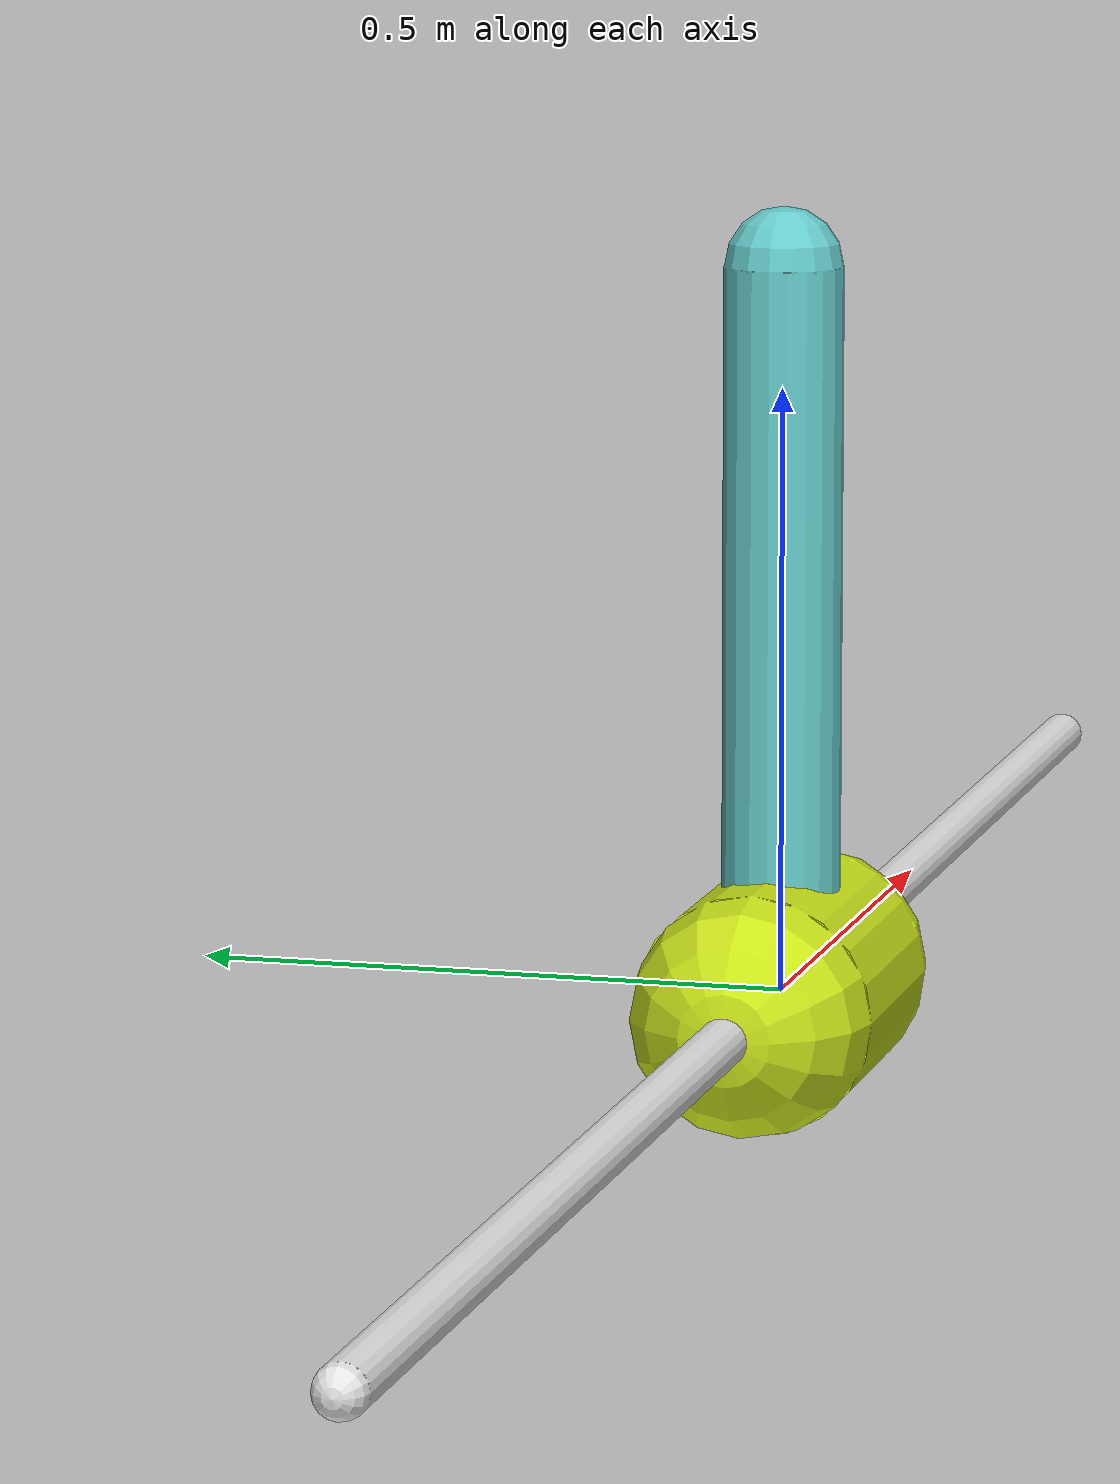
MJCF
<mujoco model="inverted pendulum">
	<compiler inertiafromgeom="true"/>
	<asset>
		<material name="mat"  shininess="0.5" specular="0.5"/>
	</asset>
	<visual>
		<map znear="0.2" zfar="3"/>
	</visual>
	<statistic extent="1" />
	<default>
		<joint armature="0" damping="1" limited="false"/>
		<geom contype="0" friction="1 0.1 0.1" />
		<light castshadow="false"/>
		<tendon/>
		<motor ctrlrange="-1 1"/>
	</default>
	<option gravity="0 0 -9.81" integrator="RK4" timestep="0.02"/>
	<size nstack="3000"/>
	<worldbody>
		<camera name="cam" mode="fixed" pos="0 -2 0" euler="90 0 0" fovy="45"/>
		<geom name="rail" pos="0 0 0" quat="0.707 0 0.707 0" rgba="0.9 0.9 0.9 1" material="mat" mass="1" size="0.02 1.2" type="capsule"/>
		<body name="cart" pos="0 0 0">
			<joint axis="1 0 0" limited="true" name="slider" pos="0 0 0" range="-1.2 1.2" type="slide" frictionloss="0.5"/>
			<geom name="cart" pos="0 0 0" quat="0.707 0 0.707 0" rgba="0.8 0.9 0.1 1" material="mat" mass="2" size="0.1 0.1" type="capsule"/>
			<body name="pole" pos="0 0 0">
				<joint axis="0 1 0" name="hinge" pos="0 0 0" type="hinge" frictionloss="0.1"/>
				<geom fromto="0 0 0 0.001 0 0.6" name="pole" rgba="0.4 0.8 0.8 1" material="mat" mass="2" size="0.049 0.3" type="capsule"/>
			</body>
		</body>
	</worldbody>
	<actuator>
		<motor gear="100" joint="slider" name="slide"/>
	</actuator>

</mujoco>
